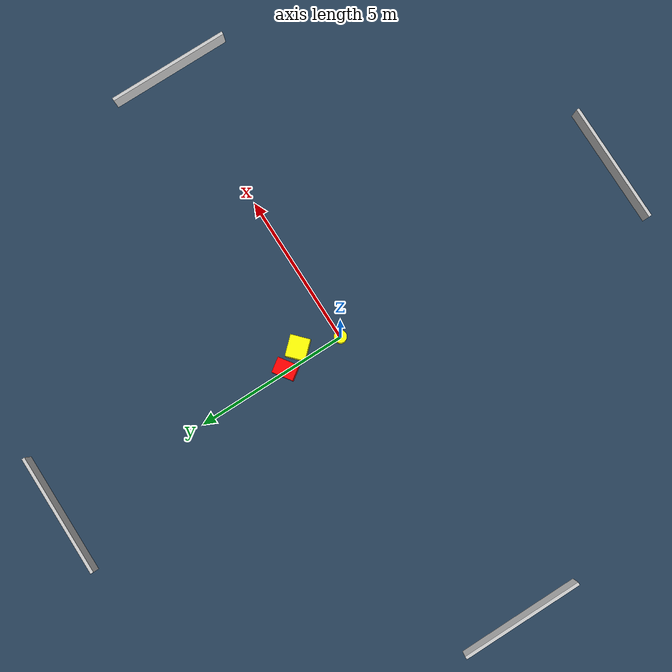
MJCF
<?xml version="1.0" ?>
<mujoco model="generated_environment">
  <option timestep="0.01" integrator="RK4" cone="elliptic"/>
  <default>
    <geom density="1"/>
  </default>
  <asset>
    <texture builtin="gradient" height="3072" name="skybox" rgb1="0.3 0.5 0.7" rgb2="0 0 0" type="skybox" width="512"/>
    <texture builtin="checker" height="300" name="groundplane" rgb1="0.2 0.3 0.4" rgb2="0.1 0.2 0.3" type="2d" width="300"/>
    <material name="groundplane" reflectance="0.2" texrepeat="5 5" texture="groundplane"/>
  </asset>
  <worldbody>
    <light dir="0 0 -1" directional="true" pos="0 0 1.5"/>
    <geom condim="3" friction="0.5 0.005 0.001" material="groundplane" name="floor" pos="0 0 0" size="0 0 0.05" type="plane"/>
    <body name="walls">
      <geom name="wall_1" condim="4" pos="-10.0 0.0 0.3" rgba="0.800000011920929 0.800000011920929 0.800000011920929 1.0" size="0.05 2.0 0.3" type="box"/>
      <geom name="wall_2" condim="4" pos="10.0 0.0 0.3" rgba="0.800000011920929 0.800000011920929 0.800000011920929 1.0" size="0.05 2.0 0.3" type="box"/>
      <geom name="wall_3" condim="4" pos="0.0 -10.0 0.3" rgba="0.800000011920929 0.800000011920929 0.800000011920929 1.0" size="2.0 0.05 0.3" type="box"/>
      <geom name="wall_4" condim="4" pos="0.0 10.0 0.3" rgba="0.800000011920929 0.800000011920929 0.800000011920929 1.0" size="2.0 0.05 0.3" type="box"/>
    </body>
    <body name="robot">
      <joint name="joint_x" type="slide" pos="0 0 0" axis="1 0 0"/>
      <joint name="joint_y" type="slide" pos="0 0 0" axis="0 1 0"/>
      <geom name="robot" type="cylinder" pos="0.0 0.0 0.2" size="0.2 0.2 0.0" mass="5.0" friction="1.0 0.005 0.0001" condim="4" rgba="1.0 1.0 0.0 1.0"/>
    </body>
    <body name="obstacle_1_movable">
      <geom name="obstacle_1_movable" condim="4" pos="0.3999090043127737 1.2837662311249125 0.3" euler="0 0 223.163928175624" friction="0.0 0.005 0.001" rgba="1.0 1.0 0.0 1.0" size="0.3140266239127824 0.3415837398899675 0.3" type="box" mass="0.1"/>
      <joint type="free"/>
    </body>
    <body name="obstacle_2_static">
      <geom name="obstacle_2_static" condim="4" pos="0.05440935346123444 1.9446839998114058 0.3" euler="0 0 125.09682704627909" friction="0.0 0.005 0.001" rgba="1.0 0.0 0.0 1.0" size="0.251797735566256 0.3430141790035639 0.3" type="box"/>
    </body>
  </worldbody>
  <actuator>
    <motor name="actuator_x" joint="joint_x" gear="1" ctrlrange="-1 1"/>
    <motor name="actuator_y" joint="joint_y" gear="1" ctrlrange="-1 1"/>
  </actuator>
</mujoco>
